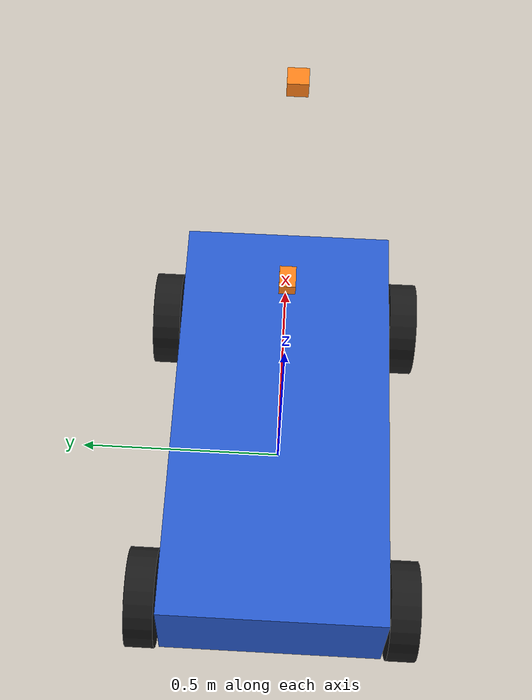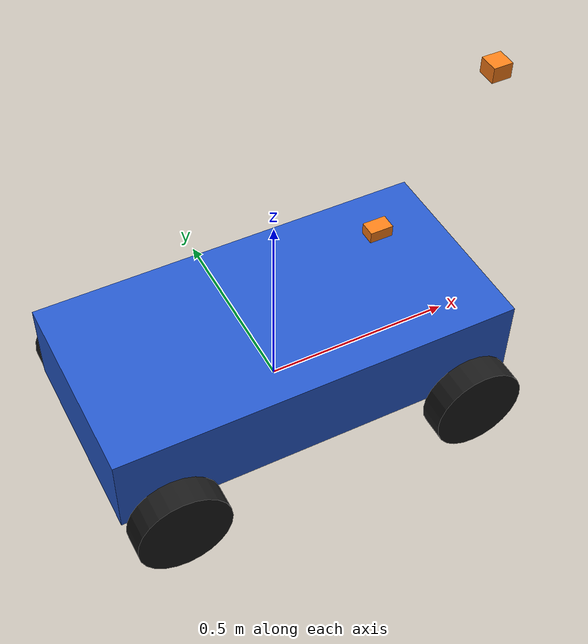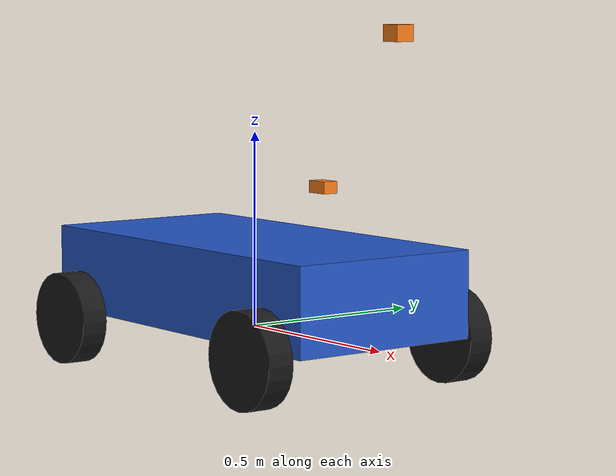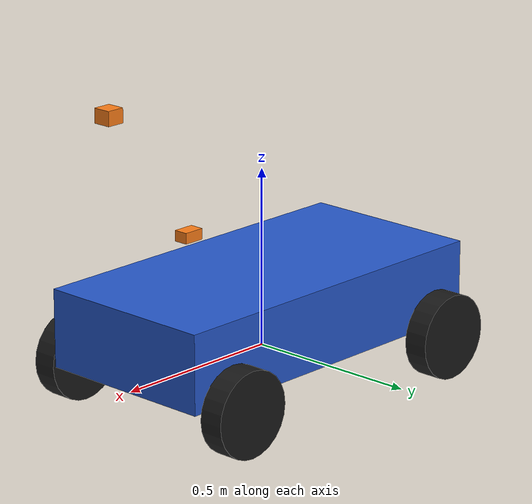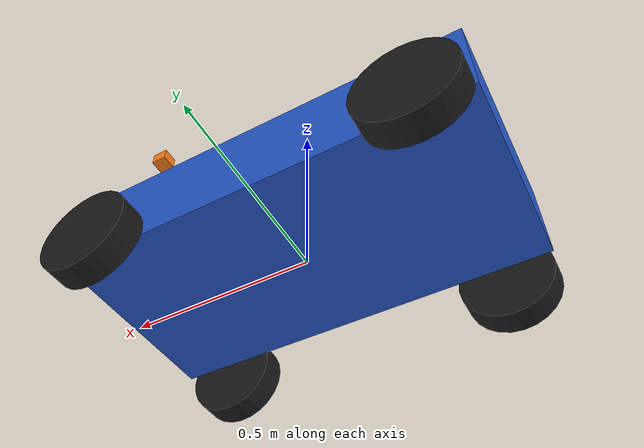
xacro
<?xml version="1.0"?>
<robot name="course_ackermann" xmlns:xacro="http://www.ros.org/wiki/xacro">
  <!-- Размеры из models/course_ackermann/model.sdf (kit v1-w06), СИ, REP-103. -->
  <xacro:arg name="wheelbase" default="0.8"/>
  <xacro:arg name="track" default="0.62"/>
  <xacro:arg name="wheel_radius" default="0.12"/>
  <xacro:property name="wheelbase" value="$(arg wheelbase)"/>
  <xacro:property name="track" value="$(arg track)"/>
  <xacro:property name="wheel_radius" value="$(arg wheel_radius)"/>
  <xacro:property name="wheel_width" value="0.07"/>

  <material name="blue"><color rgba="0.15 0.35 0.8 1"/></material>
  <material name="black"><color rgba="0.1 0.1 0.1 1"/></material>
  <material name="orange"><color rgba="1 0.5 0.1 1"/></material>

  <xacro:macro name="box_body" params="mass x y z xyz color">
    <visual>
      <origin xyz="${xyz}"/>
      <geometry><box size="${x} ${y} ${z}"/></geometry>
      <material name="${color}"/>
    </visual>
    <collision>
      <origin xyz="${xyz}"/>
      <geometry><box size="${x} ${y} ${z}"/></geometry>
    </collision>
    <inertial>
      <origin xyz="${xyz}"/>
      <mass value="${mass}"/>
      <inertia ixx="${mass*(y*y+z*z)/12}" iyy="${mass*(x*x+z*z)/12}"
               izz="${mass*(x*x+y*y)/12}" ixy="0" ixz="0" iyz="0"/>
    </inertial>
  </xacro:macro>

  <link name="base_link">
    <xacro:box_body mass="12" x="1.05" y="0.52" z="0.22" xyz="0 0 0.12" color="blue"/>
  </link>

  <xacro:macro name="wheel" params="name parent xyz">
    <link name="${name}_wheel_link">
      <visual>
        <origin rpy="${pi/2} 0 0"/>
        <geometry><cylinder radius="${wheel_radius}" length="${wheel_width}"/></geometry>
        <material name="black"/>
      </visual>
      <collision>
        <origin rpy="${pi/2} 0 0"/>
        <geometry><cylinder radius="${wheel_radius}" length="${wheel_width}"/></geometry>
      </collision>
      <!-- Цилиндр вдоль Y; тензор выражен в неповёрнутом wheel_link. -->
      <inertial>
        <mass value="0.8"/>
        <inertia ixx="${0.8*(3*wheel_radius**2+wheel_width**2)/12}"
                 iyy="${0.8*wheel_radius**2/2}"
                 izz="${0.8*(3*wheel_radius**2+wheel_width**2)/12}"
                 ixy="0" ixz="0" iyz="0"/>
      </inertial>
    </link>
    <joint name="${name}_wheel_joint" type="continuous">
      <parent link="${parent}"/><child link="${name}_wheel_link"/>
      <origin xyz="${xyz}"/><axis xyz="0 1 0"/>
      <limit effort="25" velocity="20"/>
    </joint>
  </xacro:macro>

  <xacro:macro name="front_wheel" params="name side">
    <link name="${name}_knuckle_link">
      <xacro:box_body mass="0.2" x="0.04" y="0.04" z="0.04" xyz="0 0 0" color="black"/>
    </link>
    <joint name="${name}_steering_joint" type="revolute">
      <parent link="base_link"/><child link="${name}_knuckle_link"/>
      <origin xyz="${wheelbase/2} ${side*track/2} 0"/><axis xyz="0 0 1"/>
      <limit lower="-0.55" upper="0.55" effort="25" velocity="2"/>
    </joint>
    <xacro:wheel name="${name}" parent="${name}_knuckle_link" xyz="0 0 0"/>
  </xacro:macro>
  <xacro:front_wheel name="front_left" side="1"/>
  <xacro:front_wheel name="front_right" side="-1"/>
  <xacro:wheel name="rear_left" parent="base_link" xyz="${-wheelbase/2} ${track/2} 0"/>
  <xacro:wheel name="rear_right" parent="base_link" xyz="${-wheelbase/2} ${-track/2} 0"/>

  <!-- В SDF сенсоры совпадают по позе; небольшие боксы нужны для отображения в RViz. -->
  <link name="camera_link">
    <xacro:box_body mass="${0.1/3}" x="0.06" y="0.04" z="0.03" xyz="0 0 0" color="orange"/>
  </link>
  <joint name="camera_joint" type="fixed">
    <parent link="base_link"/><child link="camera_link"/>
    <origin xyz="0.28 0 0.38"/>
  </joint>
  <link name="lidar_link">
    <xacro:box_body mass="${0.1/3}" x="0.05" y="0.05" z="0.04" xyz="0 0 0" color="orange"/>
  </link>
  <joint name="lidar_joint" type="fixed">
    <parent link="camera_link"/><child link="lidar_link"/>
    <origin xyz="0.28 0 0.38"/>
  </joint>
  <link name="imu_link">
    <xacro:box_body mass="${0.1/3}" x="0.02" y="0.02" z="0.01" xyz="0 0 0" color="orange"/>
  </link>
  <joint name="imu_joint" type="fixed">
    <parent link="base_link"/><child link="imu_link"/>
    <origin xyz="0.28 0 0.38"/>
  </joint>
</robot>
